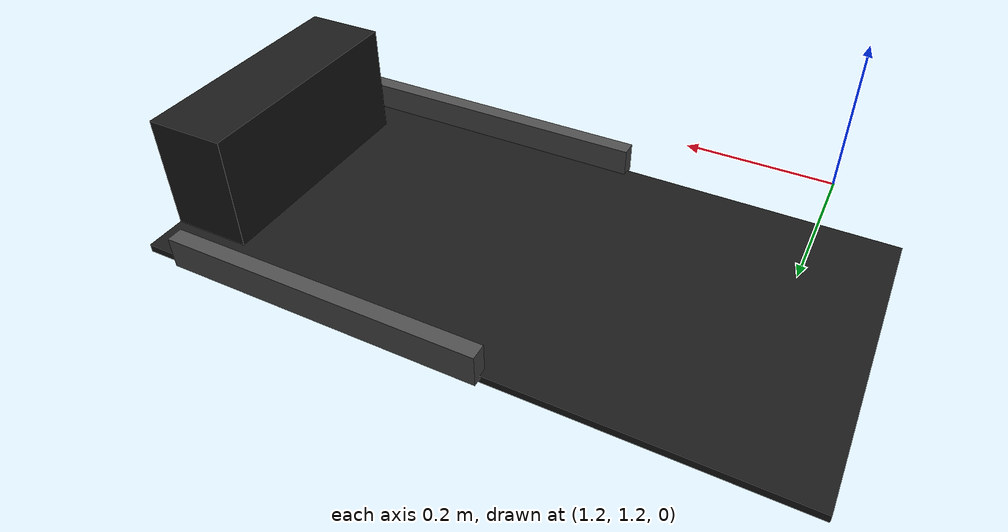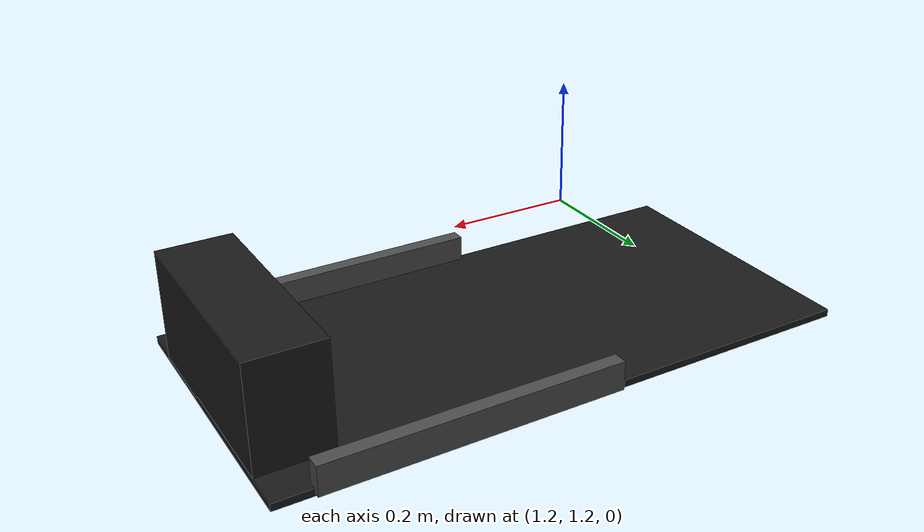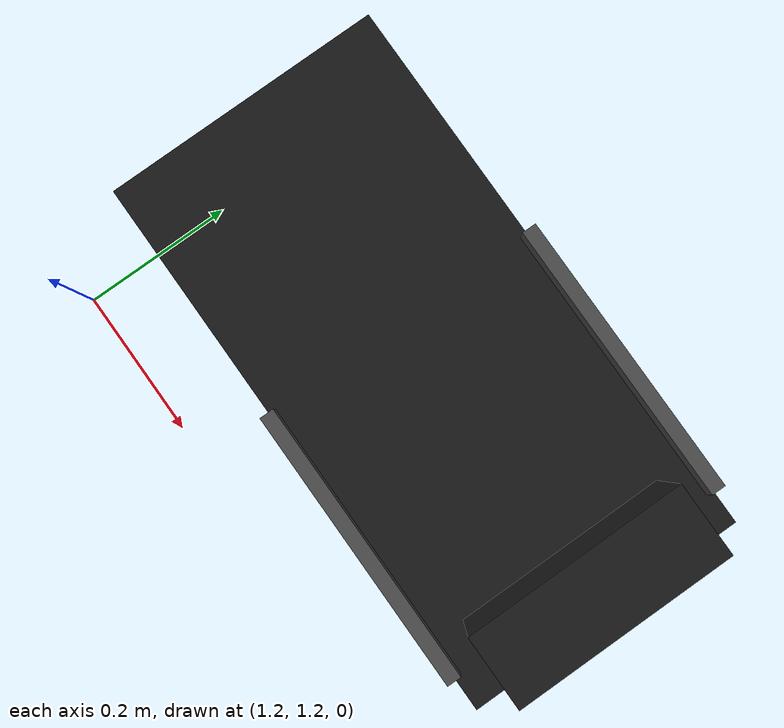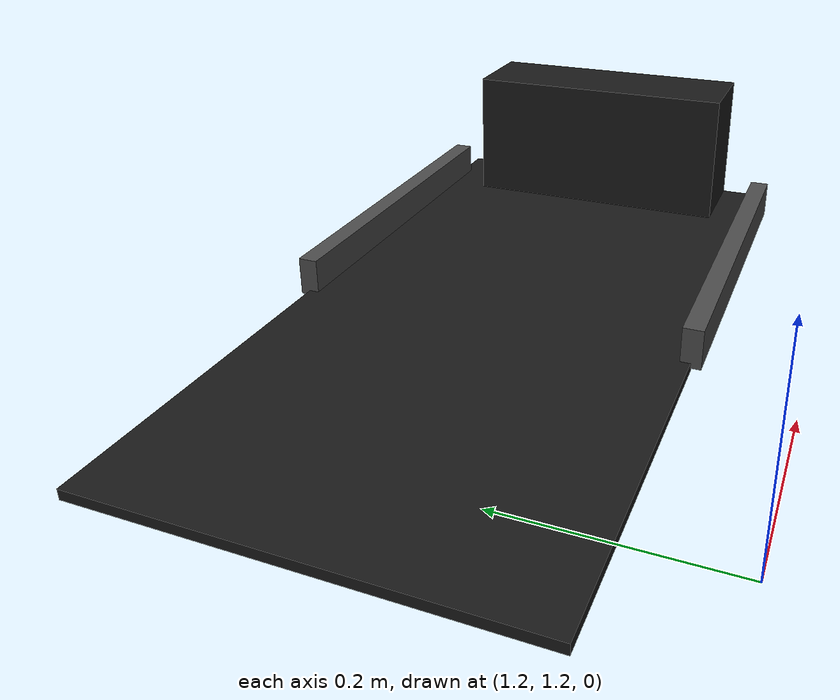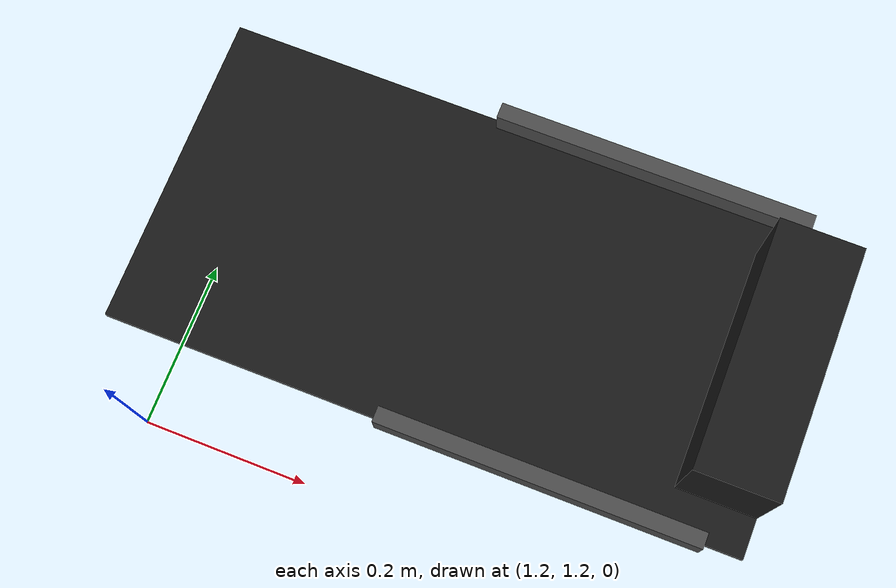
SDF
<sdf version="1.8">
 <world name="map">
  <physics name="1ms" type="ignored">
   <max_step_size>0.001</max_step_size>
   <real_time_factor>1.0</real_time_factor>
  </physics>
  <plugin filename="libgz-sim-physics-system.so" name="gz::sim::systems::Physics"/>
  <plugin filename="libgz-sim-user-commands-system.so" name="gz::sim::systems::UserCommands"/>
  <plugin filename="libgz-sim-scene-broadcaster-system.so" name="gz::sim::systems::SceneBroadcaster"/>
  <plugin filename="libgz-sim-navsat-system" name="gz::sim::systems::NavSat"/>
  <plugin filename="libgz-sim-imu-system.so" name="gz::sim::systems::Imu"/>
  <spherical_coordinates>
   <surface_model>EARTH_WGS84</surface_model>
   <world_frame_orientation>ENU</world_frame_orientation>
   <latitude_deg>-22.9</latitude_deg>
   <longitude_deg>-43.2</longitude_deg>
   <elevation>0</elevation>
   <heading_deg>0</heading_deg>
  </spherical_coordinates>
  <light type="directional" name="sun">
   <pose>0 0 10 0 0 0</pose>
   <diffuse>0.8 0.8 0.8 1</diffuse>
   <specular>0.2 0.2 0.2 1</specular>
   <direction>-0.5 0.1 -0.9</direction>
  </light>
  <model name="docking_station">
   <static>true</static>
   <pose>1.5 1.5 0 0 0 0</pose>
   <plugin filename="libgz-sim-pose-publisher-system.so" name="gz::sim::systems::PosePublisher">
    <publish_link_pose>true</publish_link_pose>
    <publish_nested_model_pose>true</publish_nested_model_pose>
    <update_frequency>1</update_frequency>
   </plugin>
   <link name="base_plate">
    <visual name="visual">
     <geometry><box><size>0.8 0.4 0.01</size></box></geometry>
     <material>
      <ambient>0.1 0.1 0.1 1</ambient>
      <diffuse>0.1 0.1 0.1 1</diffuse>
      <specular>0.01 0.01 0.01 1</specular>
     </material>
    </visual>
    <collision name="collision"><geometry><box><size>0.8 0.4 0.01</size></box></geometry></collision>
   </link>
   <link name="charging_port">
    <pose>0.35 0 0.075 0 0 0</pose>
    <visual name="visual">
     <geometry><box><size>0.1 0.3 0.15</size></box></geometry>
     <material>
      <ambient>0.1 0.1 0.1 1</ambient>
      <diffuse>0.1 0.1 0.1 1</diffuse>
      <specular>0.01 0.01 0.01 1</specular>
     </material>
    </visual>
    <collision name="collision"><geometry><box><size>0.1 0.3 0.15</size></box></geometry></collision>
   </link>
   <link name="charging_contact">
    <pose>0.32 0 0.06 0 0 0</pose>
    <visual name="visual">
     <geometry><box><size>0.02 0.15 0.03</size></box></geometry>
     <material>
      <ambient>1.0 0.0 0.0 1</ambient>
      <diffuse>1.0 0.0 0.0 1</diffuse>
      <specular>1.0 1.0 1.0 1</specular>
      <emissive>0.5 0.0 0.0 1</emissive>
     </material>
    </visual>
    <collision name="collision"><geometry><box><size>0.02 0.15 0.03</size></box></geometry></collision>
   </link>
   <link name="guide_rail_left">
    <pose>0.15 0.2 0.02 0 0 0</pose>
    <visual name="visual">
     <geometry><box><size>0.4 0.02 0.04</size></box></geometry>
     <material>
      <ambient>0.3 0.3 0.3 1</ambient>
      <diffuse>0.3 0.3 0.3 1</diffuse>
      <specular>0.1 0.1 0.1 1</specular>
     </material>
    </visual>
    <collision name="collision"><geometry><box><size>0.4 0.02 0.04</size></box></geometry></collision>
   </link>
   <link name="guide_rail_right">
    <pose>0.15 -0.2 0.02 0 0 0</pose>
    <visual name="visual">
     <geometry><box><size>0.4 0.02 0.04</size></box></geometry>
     <material>
      <ambient>0.3 0.3 0.3 1</ambient>
      <diffuse>0.3 0.3 0.3 1</diffuse>
      <specular>0.1 0.1 0.1 1</specular>
     </material>
    </visual>
    <collision name="collision"><geometry><box><size>0.4 0.02 0.04</size></box></geometry></collision>
   </link>
   <joint name="base_to_charging_port" type="fixed">
    <parent>base_plate</parent>
    <child>charging_port</child>
   </joint>
   <joint name="charging_port_to_contact" type="fixed">
    <parent>charging_port</parent>
    <child>charging_contact</child>
   </joint>
   <joint name="base_to_guide_rail_left" type="fixed">
    <parent>base_plate</parent>
    <child>guide_rail_left</child>
   </joint>
   <joint name="base_to_guide_rail_right" type="fixed">
    <parent>base_plate</parent>
    <child>guide_rail_right</child>
   </joint>
  </model>
 </world>
</sdf>
